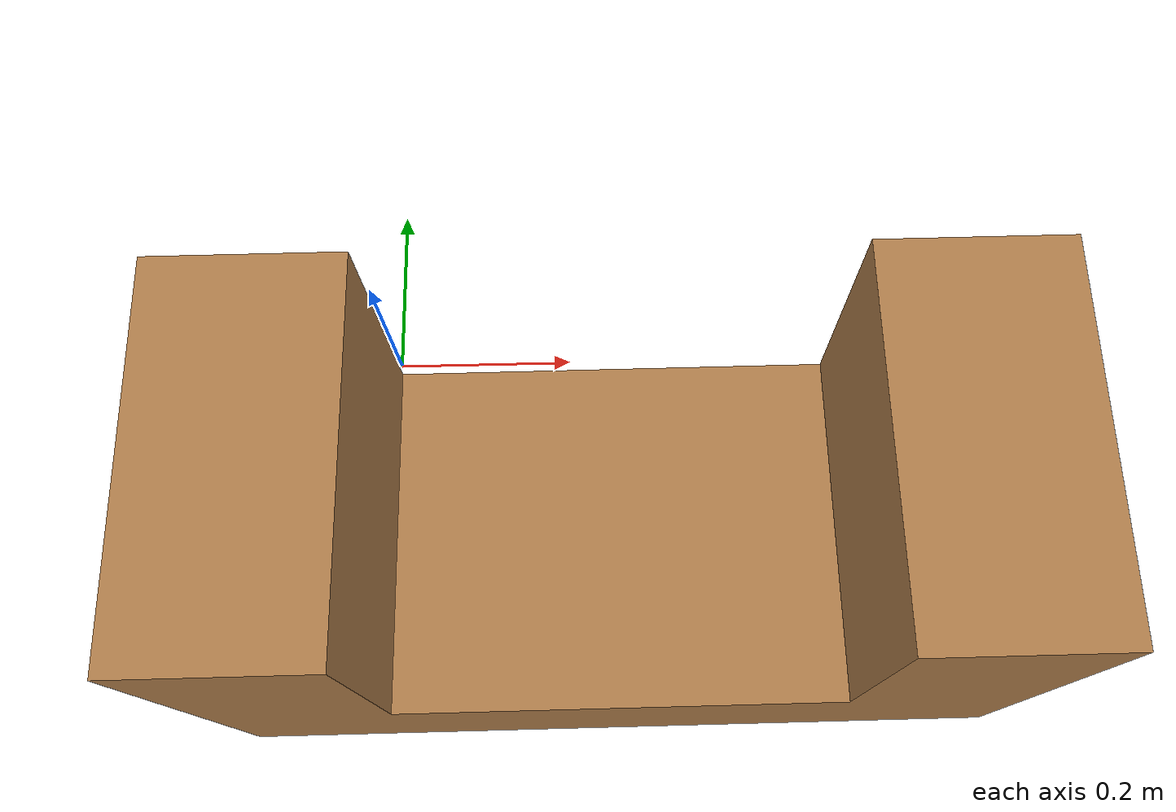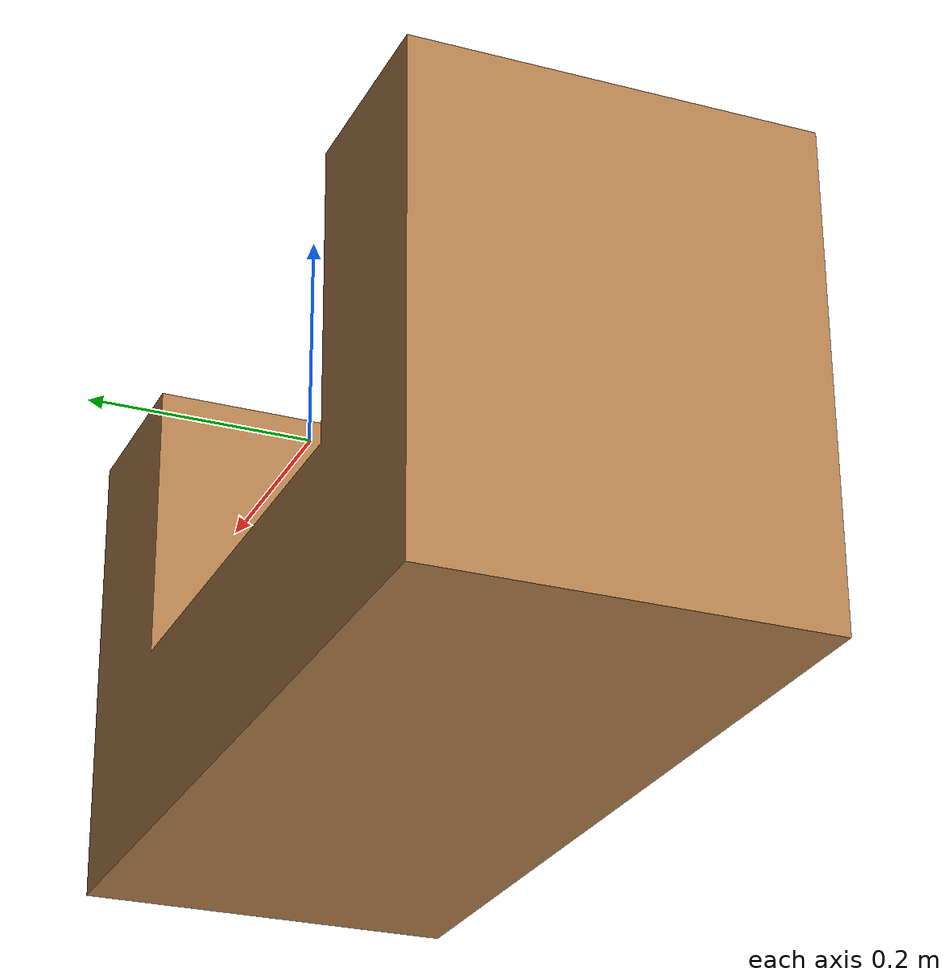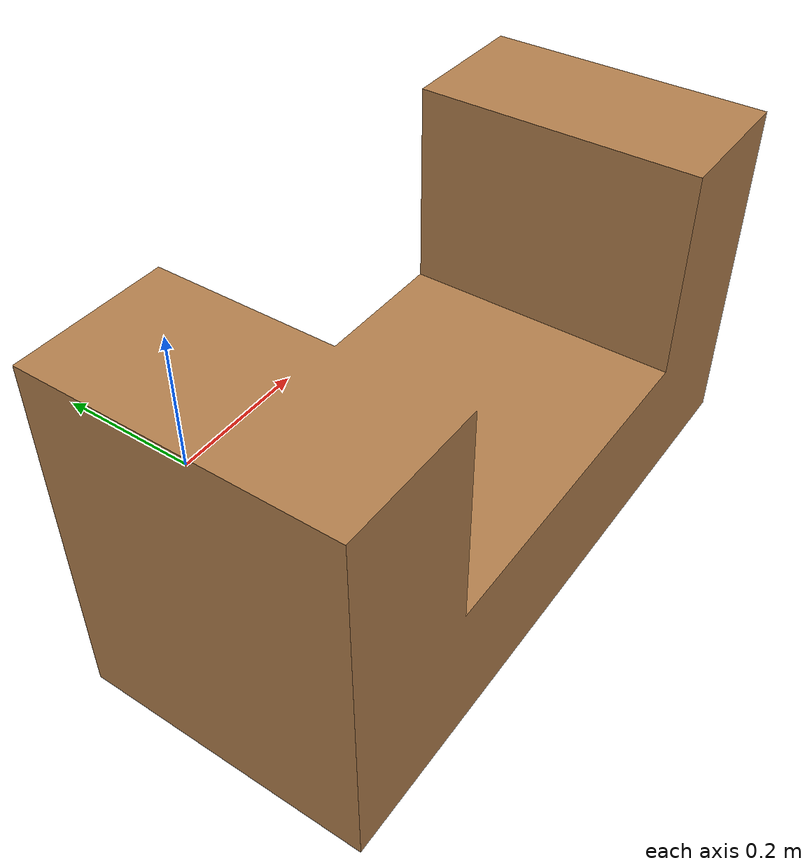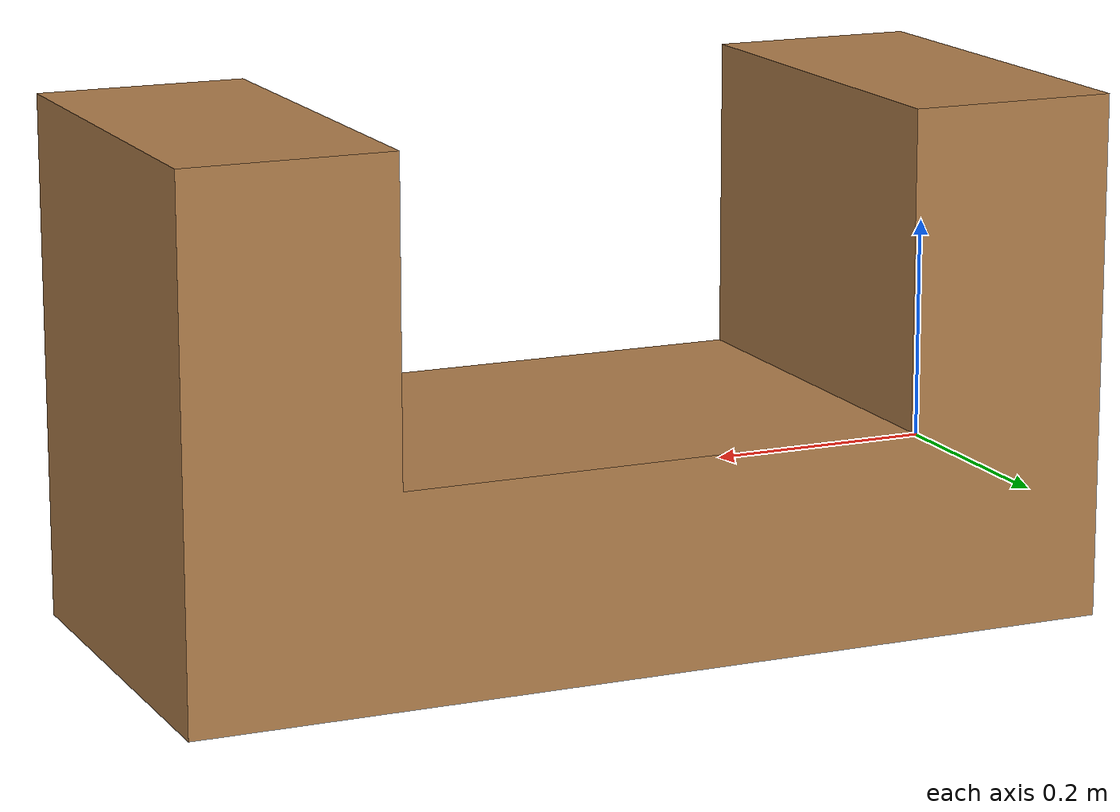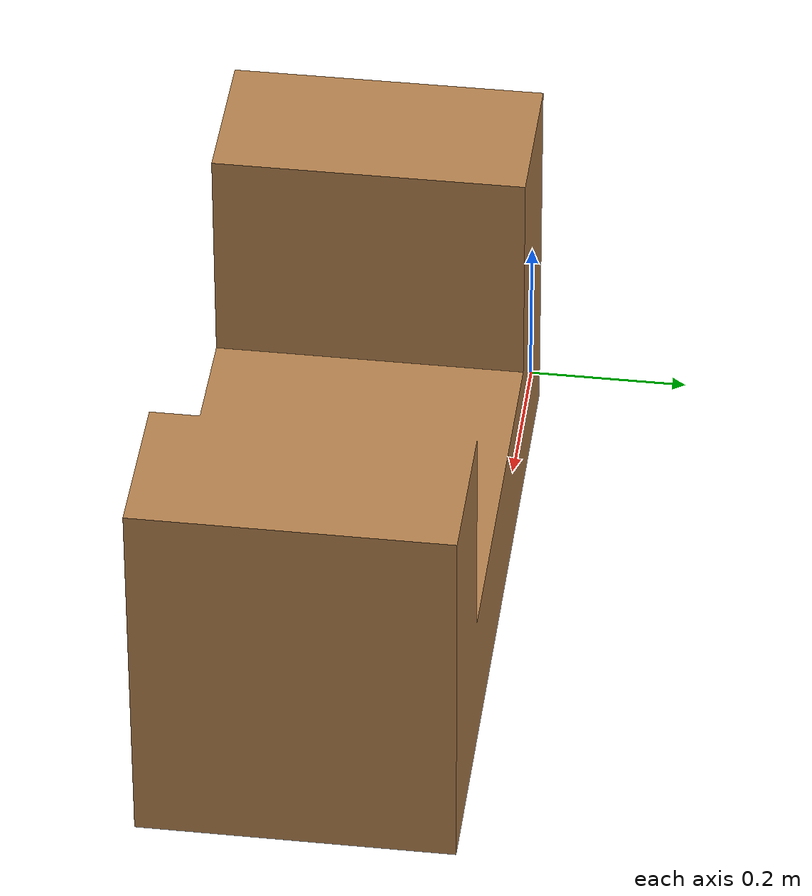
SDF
<sdf version='1.7'>
  <model name='urdf_1'>
  <static>true</static>
    <link name='base_link'>
      <inertial>
        <pose>0.25 -0.21 0 0 -0 0</pose>
        <mass>120</mass>
        <inertia>
          <ixx>4</ixx>
          <ixy>-1.0446E-16</ixy>
          <ixz>-5.8547E-16</ixz>
          <iyy>13.3</iyy>
          <iyz>2.1232E-16</iyz>
          <izz>12.5</izz>
        </inertia>
      </inertial>
      <collision name='base_link_collision'>
        <pose>0 0 0 0 -0 0</pose>
        <geometry>
          <mesh>
            <scale>1 1 1</scale>
            <uri>/home/jiaxin/workspace/turtlebot3/src/turtlebot3_simulations/turtlebot3_gazebo/meshes/base_link2.STL</uri>
          </mesh>
        </geometry>
        <max_contacts>10</max_contacts>
        <surface>
          <contact>
            <ode/>
          </contact>
          <bounce/>
          <friction>
            <torsional>
              <ode/>
            </torsional>
            <ode/>
          </friction>
        </surface>
      </collision>
      <visual name='base_link_visual'>
        <pose>0 0 0 0 -0 0</pose>
        <geometry>
          <mesh>
            <scale>1 1 1</scale>
            <uri>/home/jiaxin/workspace/turtlebot3/src/turtlebot3_simulations/turtlebot3_gazebo/meshes/base_link2.STL</uri>
          </mesh>
        </geometry>
        <material>
          <script>
            <uri>file://media/materials/scripts/gazebo.material</uri>
            <name>Gazebo/Wood</name>
          </script>
          <ambient>1 0.764706 0.305882 1</ambient>
        </material>
      </visual>
      <self_collide>0</self_collide>
      <enable_wind>0</enable_wind>
      <kinematic>0</kinematic>
    </link>
    <pose>0 0 0 0 -0 0</pose>
  </model>
</sdf>
